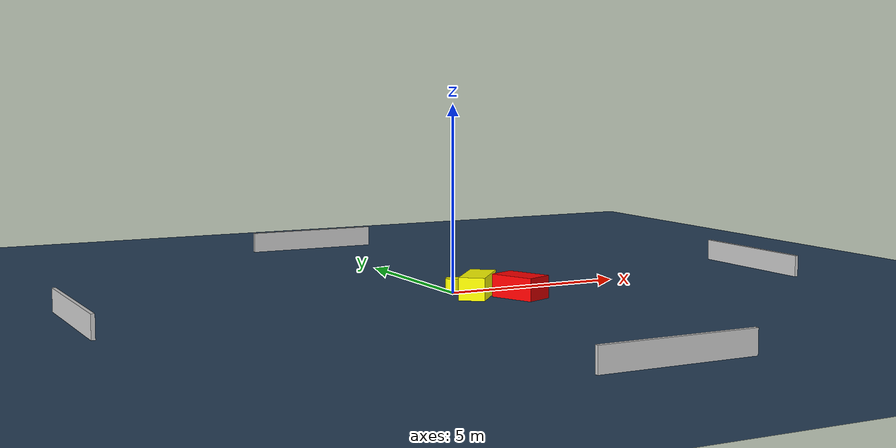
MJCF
<?xml version="1.0" ?>
<mujoco model="generated_environment">
  <option timestep="0.01" integrator="RK4" cone="elliptic"/>
  <default>
    <geom density="1"/>
  </default>
  <asset>
    <texture builtin="gradient" height="3072" name="skybox" rgb1="0.3 0.5 0.7" rgb2="0 0 0" type="skybox" width="512"/>
    <texture builtin="checker" height="300" name="groundplane" rgb1="0.2 0.3 0.4" rgb2="0.1 0.2 0.3" type="2d" width="300"/>
    <material name="groundplane" reflectance="0.2" texrepeat="5 5" texture="groundplane"/>
  </asset>
  <worldbody>
    <light dir="0 0 -1" directional="true" pos="0 0 1.5"/>
    <geom condim="3" friction="0.5 0.005 0.001" material="groundplane" name="floor" pos="0 0 0" size="0 0 0.05" type="plane"/>
    <body name="walls">
      <geom name="wall_1" condim="4" pos="-10.0 0.0 0.3" rgba="0.800000011920929 0.800000011920929 0.800000011920929 1.0" size="0.05 2.0 0.3" type="box"/>
      <geom name="wall_2" condim="4" pos="10.0 0.0 0.3" rgba="0.800000011920929 0.800000011920929 0.800000011920929 1.0" size="0.05 2.0 0.3" type="box"/>
      <geom name="wall_3" condim="4" pos="0.0 -10.0 0.3" rgba="0.800000011920929 0.800000011920929 0.800000011920929 1.0" size="2.0 0.05 0.3" type="box"/>
      <geom name="wall_4" condim="4" pos="0.0 10.0 0.3" rgba="0.800000011920929 0.800000011920929 0.800000011920929 1.0" size="2.0 0.05 0.3" type="box"/>
    </body>
    <body name="robot">
      <joint name="joint_x" type="slide" pos="0 0 0" axis="1 0 0"/>
      <joint name="joint_y" type="slide" pos="0 0 0" axis="0 1 0"/>
      <geom name="robot" type="cylinder" pos="0.0 0.0 0.2" size="0.2 0.2 0.0" mass="5.0" friction="1.0 0.005 0.0001" condim="4" rgba="1.0 1.0 0.0 1.0"/>
    </body>
    <body name="obstacle_1_movable">
      <geom name="obstacle_1_movable" condim="4" pos="0.32177182727382814 -0.7746251871708786 0.3" euler="0 0 140.21072163837133" friction="0.0 0.005 0.001" rgba="1.0 1.0 0.0 1.0" size="0.34270156334821833 0.7493488507663877 0.3" type="box" mass="0.1"/>
      <joint type="free"/>
    </body>
    <body name="obstacle_2_static">
      <geom name="obstacle_2_static" condim="4" pos="1.232771172770064 -1.4348012358865883 0.3" euler="0 0 202.329480011193" friction="0.0 0.005 0.001" rgba="1.0 0.0 0.0 1.0" size="0.3878352370918853 0.631530978134847 0.3" type="box"/>
    </body>
  </worldbody>
  <actuator>
    <motor name="actuator_x" joint="joint_x" gear="1" ctrlrange="-1 1"/>
    <motor name="actuator_y" joint="joint_y" gear="1" ctrlrange="-1 1"/>
  </actuator>
</mujoco>
